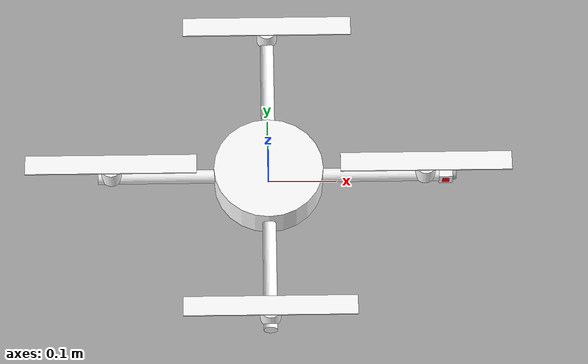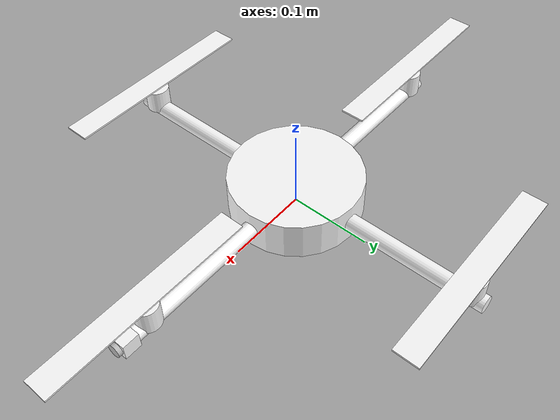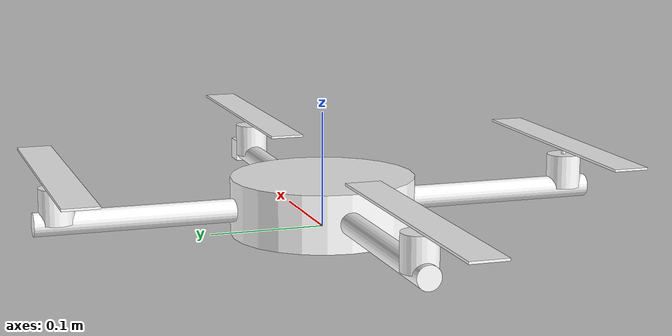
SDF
<?xml version="1.0" ?>
<sdf version="1.5">
  <model name='quad'>
    <link name='base'>
      <inertial>
        <mass>1</mass>
        <inertia>
          <ixx>0.015</ixx>
          <ixy>0</ixy>
          <ixz>0</ixz>
          <iyy>0.015</iyy>
          <iyz>0</iyz>
          <izz>0.007</izz>
        </inertia>
        <pose>0 0 0 0 -0 0</pose>
      </inertial>
      <collision name='base'>
        <geometry>
          <cylinder>
            <radius>0.1</radius>
            <length>0.05</length>
          </cylinder>
        </geometry>
        <max_contacts>10</max_contacts>
        <surface>
          <contact>
            <ode/>
          </contact>
          <bounce/>
          <friction>
            <torsional>
              <ode/>
            </torsional>
            <ode/>
          </friction>
        </surface>
      </collision>
      <collision name='land_1'>
        <pose>0.1 0 0 0 -0 0</pose>
        <geometry>
          <sphere>
            <radius>0.03</radius>
          </sphere>
        </geometry>
        <max_contacts>10</max_contacts>
        <surface>
          <contact>
            <ode/>
          </contact>
          <bounce/>
          <friction>
            <torsional>
              <ode/>
            </torsional>
            <ode/>
          </friction>
        </surface>
      </collision>
      <collision name='land_2'>
        <pose>-0.05 0.086 0 0 -0 0</pose>
        <geometry>
          <sphere>
            <radius>0.03</radius>
          </sphere>
        </geometry>
        <max_contacts>10</max_contacts>
        <surface>
          <contact>
            <ode/>
          </contact>
          <bounce/>
          <friction>
            <torsional>
              <ode/>
            </torsional>
            <ode/>
          </friction>
        </surface>
      </collision>
      <collision name='land_3'>
        <pose>-0.05 -0.086 0 0 -0 0</pose>
        <geometry>
          <sphere>
            <radius>0.03</radius>
          </sphere>
        </geometry>
        <max_contacts>10</max_contacts>
        <surface>
          <contact>
            <ode/>
          </contact>
          <bounce/>
          <friction>
            <torsional>
              <ode/>
            </torsional>
            <ode/>
          </friction>
        </surface>
      </collision>
      <visual name='body'>
        <geometry>
          <cylinder>
            <radius>0.08</radius>
            <length>0.05</length>
          </cylinder>
        </geometry>
        <material>
          <ambient>1 0.6 0.4 1</ambient>
          <diffuse>1 1 1 1</diffuse>
        </material>
      </visual>
      <visual name='arm-1'>
        <pose>0.125 0 0 3.14159 1.57079 3.14159</pose>
        <geometry>
          <cylinder>
            <radius>0.01</radius>
            <length>0.25</length>
          </cylinder>
        </geometry>
        <material>
          <ambient>1 0.4 0.4 1</ambient>
          <diffuse>1 1 1 1</diffuse>
        </material>
      </visual>
      <visual name='arm-2'>
        <pose>0 0.125 0 3.14159 1.57079 -1.57079</pose>
        <geometry>
          <cylinder>
            <radius>0.01</radius>
            <length>0.25</length>
          </cylinder>
        </geometry>
        <material>
          <ambient>0.6 0.6 0.6 1</ambient>
          <diffuse>1 1 1 1</diffuse>
        </material>
      </visual>
      <visual name='arm-3'>
        <pose>-0.125 0 0 3.14159 1.57079 3.14159</pose>
        <geometry>
          <cylinder>
            <radius>0.01</radius>
            <length>0.25</length>
          </cylinder>
        </geometry>
        <material>
          <ambient>0.6 0.6 0.6 1</ambient>
          <diffuse>1 1 1 1</diffuse>
        </material>
      </visual>
      <visual name='arm-4'>
        <pose>0 -0.125 0 3.14159 1.57079 -1.57079</pose>
        <geometry>
          <cylinder>
            <radius>0.01</radius>
            <length>0.25</length>
          </cylinder>
        </geometry>
        <material>
          <ambient>0.6 0.6 0.6 1</ambient>
          <diffuse>1 1 1 1</diffuse>
        </material>
      </visual>
      <self_collide>0</self_collide>
      <enable_wind>0</enable_wind>
      <kinematic>0</kinematic>
    </link>
    <frame name='rotor-1::__model__' attached_to='rotor-1::propeller'>
      <pose relative_to='__model__'>0.23 0 0 0 -0 0</pose>
    </frame>
    <link name='rotor-1::propeller'>
      <inertial>
        <mass>0.07</mass>
        <inertia>
          <ixx>4e-05</ixx>
          <ixy>0</ixy>
          <ixz>0</ixz>
          <iyy>4e-05</iyy>
          <iyz>0</iyz>
          <izz>8e-05</izz>
        </inertia>
        <pose>0 0 0 0 -0 0</pose>
      </inertial>
      <collision name='collision'>
        <pose>0 0 0.04 0 -0 0</pose>
        <geometry>
          <cylinder>
            <radius>0.127</radius>
            <length>0.002</length>
          </cylinder>
        </geometry>
        <max_contacts>10</max_contacts>
        <surface>
          <contact>
            <ode/>
          </contact>
          <bounce/>
          <friction>
            <torsional>
              <ode/>
            </torsional>
            <ode/>
          </friction>
        </surface>
      </collision>
      <visual name='motor'>
        <pose>0 0 0.015 0 -0 0</pose>
        <geometry>
          <cylinder>
            <radius>0.015</radius>
            <length>0.03</length>
          </cylinder>
        </geometry>
        <material>
          <ambient>0.1 0.1 0.1 1</ambient>
          <diffuse>1 1 1 1</diffuse>
        </material>
      </visual>
      <visual name='axle'>
        <pose>0 0 0.035 0 -0 0</pose>
        <geometry>
          <cylinder>
            <radius>0.002</radius>
            <length>0.01</length>
          </cylinder>
        </geometry>
        <material>
          <ambient>0.1 0.1 0.1 1</ambient>
          <diffuse>1 1 1 1</diffuse>
        </material>
      </visual>
      <visual name='blade'>
        <pose>0 0 0.04 0 -0 0</pose>
        <geometry>
          <box>
            <size>0.25 0.03 0.002</size>
          </box>
        </geometry>
        <material>
          <ambient>0.1 0.1 0.1 1</ambient>
          <diffuse>1 1 1 1</diffuse>
        </material>
      </visual>
      <pose relative_to='rotor-1::__model__'>0 0 0 0 -0 0</pose>
      <self_collide>0</self_collide>
      <enable_wind>0</enable_wind>
      <kinematic>0</kinematic>
    </link>
    <joint name='rotor-1' type='revolute'>
      <parent>base</parent>
      <child>rotor-1::propeller</child>
      <axis>
        <xyz>0 0 1</xyz>
        <limit>
          <lower>-1e+16</lower>
          <upper>1e+16</upper>
        </limit>
        <dynamics>
          <spring_reference>0</spring_reference>
          <spring_stiffness>0</spring_stiffness>
        </dynamics>
      </axis>
    </joint>
    <frame name='rotor-2::__model__' attached_to='rotor-2::propeller'>
      <pose relative_to='__model__'>0 0.23 0 0 -0 0</pose>
    </frame>
    <link name='rotor-2::propeller'>
      <inertial>
        <mass>0.07</mass>
        <inertia>
          <ixx>4e-05</ixx>
          <ixy>0</ixy>
          <ixz>0</ixz>
          <iyy>4e-05</iyy>
          <iyz>0</iyz>
          <izz>8e-05</izz>
        </inertia>
        <pose>0 0 0 0 -0 0</pose>
      </inertial>
      <collision name='collision'>
        <pose>0 0 0.04 0 -0 0</pose>
        <geometry>
          <cylinder>
            <radius>0.127</radius>
            <length>0.002</length>
          </cylinder>
        </geometry>
        <max_contacts>10</max_contacts>
        <surface>
          <contact>
            <ode/>
          </contact>
          <bounce/>
          <friction>
            <torsional>
              <ode/>
            </torsional>
            <ode/>
          </friction>
        </surface>
      </collision>
      <visual name='motor'>
        <pose>0 0 0.015 0 -0 0</pose>
        <geometry>
          <cylinder>
            <radius>0.015</radius>
            <length>0.03</length>
          </cylinder>
        </geometry>
        <material>
          <ambient>0.1 0.1 0.1 1</ambient>
          <diffuse>1 1 1 1</diffuse>
        </material>
      </visual>
      <visual name='axle'>
        <pose>0 0 0.035 0 -0 0</pose>
        <geometry>
          <cylinder>
            <radius>0.002</radius>
            <length>0.01</length>
          </cylinder>
        </geometry>
        <material>
          <ambient>0.1 0.1 0.1 1</ambient>
          <diffuse>1 1 1 1</diffuse>
        </material>
      </visual>
      <visual name='blade'>
        <pose>0 0 0.04 0 -0 0</pose>
        <geometry>
          <box>
            <size>0.25 0.03 0.002</size>
          </box>
        </geometry>
        <material>
          <ambient>0.1 0.1 0.1 1</ambient>
          <diffuse>1 1 1 1</diffuse>
        </material>
      </visual>
      <pose relative_to='rotor-2::__model__'>0 0 0 0 -0 0</pose>
      <self_collide>0</self_collide>
      <enable_wind>0</enable_wind>
      <kinematic>0</kinematic>
    </link>
    <joint name='rotor-2' type='revolute'>
      <parent>base</parent>
      <child>rotor-2::propeller</child>
      <axis>
        <xyz>0 0 1</xyz>
        <limit>
          <lower>-1e+16</lower>
          <upper>1e+16</upper>
        </limit>
        <dynamics>
          <spring_reference>0</spring_reference>
          <spring_stiffness>0</spring_stiffness>
        </dynamics>
      </axis>
    </joint>
    <frame name='rotor-3::__model__' attached_to='rotor-3::propeller'>
      <pose relative_to='__model__'>-0.23 0 0 0 -0 0</pose>
    </frame>
    <link name='rotor-3::propeller'>
      <inertial>
        <mass>0.07</mass>
        <inertia>
          <ixx>4e-05</ixx>
          <ixy>0</ixy>
          <ixz>0</ixz>
          <iyy>4e-05</iyy>
          <iyz>0</iyz>
          <izz>8e-05</izz>
        </inertia>
        <pose>0 0 0 0 -0 0</pose>
      </inertial>
      <collision name='collision'>
        <pose>0 0 0.04 0 -0 0</pose>
        <geometry>
          <cylinder>
            <radius>0.127</radius>
            <length>0.002</length>
          </cylinder>
        </geometry>
        <max_contacts>10</max_contacts>
        <surface>
          <contact>
            <ode/>
          </contact>
          <bounce/>
          <friction>
            <torsional>
              <ode/>
            </torsional>
            <ode/>
          </friction>
        </surface>
      </collision>
      <visual name='motor'>
        <pose>0 0 0.015 0 -0 0</pose>
        <geometry>
          <cylinder>
            <radius>0.015</radius>
            <length>0.03</length>
          </cylinder>
        </geometry>
        <material>
          <ambient>0.1 0.1 0.1 1</ambient>
          <diffuse>1 1 1 1</diffuse>
        </material>
      </visual>
      <visual name='axle'>
        <pose>0 0 0.035 0 -0 0</pose>
        <geometry>
          <cylinder>
            <radius>0.002</radius>
            <length>0.01</length>
          </cylinder>
        </geometry>
        <material>
          <ambient>0.1 0.1 0.1 1</ambient>
          <diffuse>1 1 1 1</diffuse>
        </material>
      </visual>
      <visual name='blade'>
        <pose>0 0 0.04 0 -0 0</pose>
        <geometry>
          <box>
            <size>0.25 0.03 0.002</size>
          </box>
        </geometry>
        <material>
          <ambient>0.1 0.1 0.1 1</ambient>
          <diffuse>1 1 1 1</diffuse>
        </material>
      </visual>
      <pose relative_to='rotor-3::__model__'>0 0 0 0 -0 0</pose>
      <self_collide>0</self_collide>
      <enable_wind>0</enable_wind>
      <kinematic>0</kinematic>
    </link>
    <joint name='rotor-3' type='revolute'>
      <parent>base</parent>
      <child>rotor-3::propeller</child>
      <axis>
        <xyz>0 0 1</xyz>
        <limit>
          <lower>-1e+16</lower>
          <upper>1e+16</upper>
        </limit>
        <dynamics>
          <spring_reference>0</spring_reference>
          <spring_stiffness>0</spring_stiffness>
        </dynamics>
      </axis>
    </joint>
    <frame name='rotor-4::__model__' attached_to='rotor-4::propeller'>
      <pose relative_to='__model__'>0 -0.23 0 0 -0 0</pose>
    </frame>
    <link name='rotor-4::propeller'>
      <inertial>
        <mass>0.07</mass>
        <inertia>
          <ixx>4e-05</ixx>
          <ixy>0</ixy>
          <ixz>0</ixz>
          <iyy>4e-05</iyy>
          <iyz>0</iyz>
          <izz>8e-05</izz>
        </inertia>
        <pose>0 0 0 0 -0 0</pose>
      </inertial>
      <collision name='collision'>
        <pose>0 0 0.04 0 -0 0</pose>
        <geometry>
          <cylinder>
            <radius>0.127</radius>
            <length>0.002</length>
          </cylinder>
        </geometry>
        <max_contacts>10</max_contacts>
        <surface>
          <contact>
            <ode/>
          </contact>
          <bounce/>
          <friction>
            <torsional>
              <ode/>
            </torsional>
            <ode/>
          </friction>
        </surface>
      </collision>
      <visual name='motor'>
        <pose>0 0 0.015 0 -0 0</pose>
        <geometry>
          <cylinder>
            <radius>0.015</radius>
            <length>0.03</length>
          </cylinder>
        </geometry>
        <material>
          <ambient>0.1 0.1 0.1 1</ambient>
          <diffuse>1 1 1 1</diffuse>
        </material>
      </visual>
      <visual name='axle'>
        <pose>0 0 0.035 0 -0 0</pose>
        <geometry>
          <cylinder>
            <radius>0.002</radius>
            <length>0.01</length>
          </cylinder>
        </geometry>
        <material>
          <ambient>0.1 0.1 0.1 1</ambient>
          <diffuse>1 1 1 1</diffuse>
        </material>
      </visual>
      <visual name='blade'>
        <pose>0 0 0.04 0 -0 0</pose>
        <geometry>
          <box>
            <size>0.25 0.03 0.002</size>
          </box>
        </geometry>
        <material>
          <ambient>0.1 0.1 0.1 1</ambient>
          <diffuse>1 1 1 1</diffuse>
        </material>
      </visual>
      <pose relative_to='rotor-4::__model__'>0 0 0 0 -0 0</pose>
      <self_collide>0</self_collide>
      <enable_wind>0</enable_wind>
      <kinematic>0</kinematic>
    </link>
    <joint name='rotor-4' type='revolute'>
      <parent>base</parent>
      <child>rotor-4::propeller</child>
      <axis>
        <xyz>0 0 1</xyz>
        <limit>
          <lower>-1e+16</lower>
          <upper>1e+16</upper>
        </limit>
        <dynamics>
          <spring_reference>0</spring_reference>
          <spring_stiffness>0</spring_stiffness>
        </dynamics>
      </axis>
    </joint>
    <link name="depth_camera">
      <gravity>0</gravity>
      <inertial>
        <mass>0.1</mass>
        <inertia>
          <ixx>1e-5</ixx>
          <ixy>0</ixy>
          <ixz>0</ixz>
          <iyy>1e-5</iyy>
          <iyz>0</iyz>
          <izz>1e-5</izz>
        </inertia>
      </inertial>

      <collision name="collision">
        <pose>0 0 0.04 0 0 0</pose>
        <geometry>
          <box>
            <size>0.02 0.02 0.02</size>
          </box>
        </geometry>
      </collision>

      <!-- Rotate in order to have the camera looking toward +Z when aligned with worldframe -->
      <pose>0.26 0 0  1.57 0 -1.57</pose>

      <visual name="depth_camera">
        <pose>0 0 0 0 0 0</pose>
        <geometry>
          <box>
            <size>0.02 0.02 0.02</size>
          </box>
        </geometry>
        <material>
          <ambient>0.1 0.1 0.1 1</ambient>
          <diffuse>1.0 1.0 1.0 1</diffuse>
        </material>
      </visual>
      <visual name="xface">
        <pose>0.01 0 0 0 0 0</pose>
        <geometry>
          <box>
            <size>0.001 0.01 0.01</size>
          </box>
        </geometry>
        <material>
          <ambient>1 0 0 1</ambient>
          <diffuse>1 0 0 1</diffuse>
        </material>
      </visual>
      <visual name="yface">
        <pose>0 -0.01 0 0 0 0</pose>
        <geometry>
          <box>
            <size>0.01 0.001 0.01</size>
          </box>
        </geometry>
        <material>
          <ambient>0 1 0 1</ambient>
          <diffuse>0 1 0 1</diffuse>
        </material>
      </visual>
      <visual name="lens">
        <pose>0 0 -0.01  0 0 0</pose>
        <geometry>
          <cylinder>
            <radius>0.008</radius>
            <length>0.01</length>
          </cylinder>
        </geometry>
      </visual>

      <sensor name="cam" type="depth">
        <topic>mrsim-depth</topic>
        <pose>0 0 -0.015 1.5708 1.5708 3.1415</pose>
        <camera>
          <horizontal_fov>1.57</horizontal_fov>
          <image>
            <width>480</width>
            <height>270</height>
            <format>R_FLOAT32</format>
          </image>
          <clip>
            <near>0.1</near>
            <far>5</far>
          </clip>
        </camera>
        <visualize>1</visualize>
        <always_on>1</always_on>
        <update_rate>60</update_rate>
      </sensor>
    </link>
    <joint name='depth_camera_joint' type='fixed'>
      <child>depth_camera</child>
      <parent>base</parent>
      <pose>0 0 0 0 -0 0</pose>
      <axis>
        <xyz>1 0 0</xyz>
        <limit>
          <lower>-1e+16</lower>
          <upper>1e+16</upper>
        </limit>
      </axis>
    </joint>
    <link name='down_camera_link'>
      <pose>0 0 0 3.14159 1.57079 3.14159</pose>
      <inertial>
        <pose>0 0 0 0 -0 0</pose>
        <mass>0.001</mass>
        <inertia>
          <ixx>3.2061e-05</ixx>
          <ixy>-1.169e-08</ixy>
          <ixz>-4.2601e-10</ixz>
          <iyy>3.0815e-05</iyy>
          <iyz>5.2182e-10</iyz>
          <izz>5.1652e-06</izz>
        </inertia>
      </inertial>
      <visual name='down_camera_visual'>
        <pose>0 0 0 0 -0 0</pose>
        <geometry>
          <cylinder>
            <radius>0.02</radius>
            <length>0.04</length>
          </cylinder>
        </geometry>
        <material>
          <ambient>0.1 0.1 0.1 1</ambient>
          <diffuse>1 1 1 1</diffuse>
        </material>
      </visual>
      <gravity>1</gravity>
      <velocity_decay/>
      <self_collide>0</self_collide>
      <sensor name='down_camera' type='camera'>
        <pose>0 0 0 0 -0 0</pose>
        <camera>
          <horizontal_fov>1.2</horizontal_fov>
          <image>
            <format>R8G8B8</format>
            <width>640</width>
            <height>480</height>
          </image>
          <clip>
            <near>0.05</near>
            <far>15000</far>
          </clip>
        </camera>
        <always_on>1</always_on>
        <update_rate>10</update_rate>
      </sensor>
      <enable_wind>0</enable_wind>
      <kinematic>0</kinematic>
    </link>
    <joint name='down_camera_joint' type='fixed'>
      <child>down_camera_link</child>
      <parent>base</parent>
      <pose>0 0 0 0 -0 0</pose>
      <axis>
        <xyz>1 0 0</xyz>
        <limit>
          <lower>-1e+16</lower>
          <upper>1e+16</upper>
        </limit>
      </axis>
    </joint>
    <plugin name='mrsim' filename='mrsim-gazebo.so'>
      <link>base</link>
      <rotors>
        <noise>0.03</noise>
        <cf>6.5e-4</cf>
        <ct>1e-5</ct>
        <rotor>
          <joint spin='cw'>rotor-1</joint>
        </rotor>
        <rotor>
          <joint spin='ccw'>rotor-2</joint>
        </rotor>
        <rotor>
          <joint spin='cw'>rotor-3</joint>
        </rotor>
        <rotor>
          <joint spin='ccw'>rotor-4</joint>
        </rotor>
      </rotors>
    </plugin>
    <pose>0 0 0.02 0 -0 0</pose>
  </model>
  <plugin name='optitrack' filename='optitrack-gazebo.so'>
    <hz>1000</hz>
    <port>1509</port>
    <publish>
      <link>quad::base</link>
      <name>QR</name>
    </publish>
  </plugin>
</sdf>
